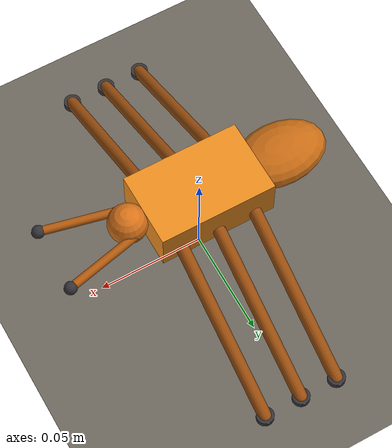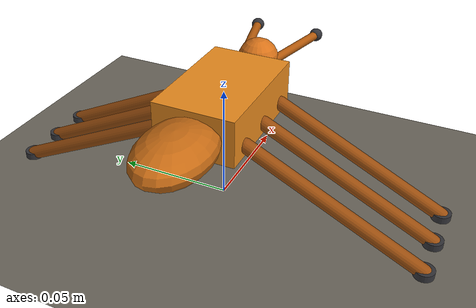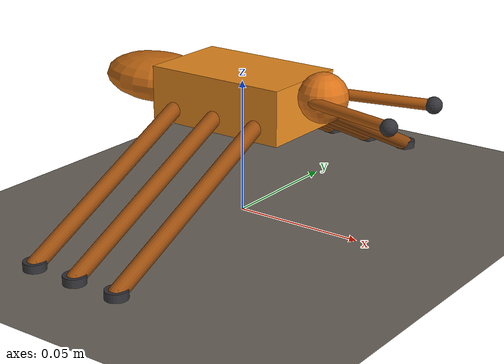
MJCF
<mujoco model="astraant_worker_gripfoot">

  <compiler angle="degree" coordinate="local"/>

  <option timestep="0.001" gravity="0 0 -9.81">
    <flag contact="enable"/>
  </option>

  <default>
    <joint damping="0.001" armature="0.00001" limited="true"/>
    <geom condim="3" friction="0.8 0.005 0.001" solref="0.02 1"/>
  </default>

  <asset>
    <material name="body_orange" rgba="0.92 0.55 0.12 1"/>
    <material name="abdomen_color" rgba="0.78 0.42 0.08 1"/>
    <material name="head_color" rgba="0.85 0.45 0.10 1"/>
    <material name="leg_brown" rgba="0.60 0.30 0.05 1"/>
    <material name="foot_pad_mat" rgba="0.20 0.20 0.22 1"/>
    <material name="mandible_color" rgba="0.70 0.35 0.05 1"/>
    <material name="regolith" rgba="0.42 0.40 0.36 1"/>
  </asset>

  <worldbody>
    <light diffuse="0.9 0.9 0.85" dir="-0.2 -0.3 -1" pos="0.2 0.3 0.5"/>
    <light diffuse="0.3 0.3 0.35" dir="0.5 0.5 -0.3" pos="-0.3 -0.3 0.3"/>

    <!-- Asteroid surface. Friction set at runtime per surface type:
         C-type rubble: 0.4  |  S-type rubble: 0.5
         S-type monolith: 0.7  |  M-type metallic: 0.6 -->
    <geom name="ground" type="plane" size="0.5 0.5 0.01"
          material="regolith" friction="0.5 0.01 0.001"/>

    <!-- ============ TORSO ============ -->
    <body name="torso" pos="0 0 0.045">
      <freejoint name="root"/>
      <camera name="track" pos="0 -0.25 0.12" xyaxes="1 0 0 0 0.5 1" mode="track"/>
      <camera name="top" pos="0 0 0.3" xyaxes="1 0 0 0 1 0" mode="track"/>

      <!-- Thorax: 55 x 35 x 20 mm (mass adjusted for lighter feet) -->
      <geom name="thorax" type="box" size="0.0275 0.0175 0.01"
            mass="0.0594" material="body_orange"/>

      <!-- Abdomen: 45 x 30 x 18 mm -->
      <geom name="abdomen" type="ellipsoid" size="0.0225 0.015 0.009"
            pos="-0.040 0 0" mass="0.020" material="abdomen_color"/>

      <!-- Head: 18 mm sphere -->
      <geom name="head" type="sphere" size="0.009"
            pos="0.035 0 0.005" mass="0.008" material="head_color"/>

      <!-- ============ LEG 0: Front-Left (Group A) ============ -->
      <body name="leg_0_FL" pos="0.018 0.0175 -0.005">
        <joint name="j_leg_0" type="hinge" axis="0 -1 0" range="-30 30"/>
        <geom name="leg_0" type="capsule"
              fromto="0 0 0  0 0.0725 -0.035" size="0.003"
              mass="0.003" material="leg_brown"/>
        <body name="foot_0" pos="0 0.0725 -0.035">
          <geom name="foot_0_pad" type="cylinder" size="0.004 0.0015"
                mass="0.0011" material="foot_pad_mat"
                friction="5.0 0.02 0.005" condim="6"
                solref="0.01 1"/>
        </body>
      </body>

      <!-- ============ LEG 1: Front-Right (Group B) ============ -->
      <body name="leg_1_FR" pos="0.018 -0.0175 -0.005">
        <joint name="j_leg_1" type="hinge" axis="0 -1 0" range="-30 30"/>
        <geom name="leg_1" type="capsule"
              fromto="0 0 0  0 -0.0725 -0.035" size="0.003"
              mass="0.003" material="leg_brown"/>
        <body name="foot_1" pos="0 -0.0725 -0.035">
          <geom name="foot_1_pad" type="cylinder" size="0.004 0.0015"
                mass="0.0011" material="foot_pad_mat"
                friction="5.0 0.02 0.005" condim="6"
                solref="0.01 1"/>
        </body>
      </body>

      <!-- ============ LEG 2: Mid-Left (Group B) ============ -->
      <body name="leg_2_ML" pos="0 0.0175 -0.005">
        <joint name="j_leg_2" type="hinge" axis="0 -1 0" range="-30 30"/>
        <geom name="leg_2" type="capsule"
              fromto="0 0 0  0 0.0725 -0.035" size="0.003"
              mass="0.003" material="leg_brown"/>
        <body name="foot_2" pos="0 0.0725 -0.035">
          <geom name="foot_2_pad" type="cylinder" size="0.004 0.0015"
                mass="0.0011" material="foot_pad_mat"
                friction="5.0 0.02 0.005" condim="6"
                solref="0.01 1"/>
        </body>
      </body>

      <!-- ============ LEG 3: Mid-Right (Group A) ============ -->
      <body name="leg_3_MR" pos="0 -0.0175 -0.005">
        <joint name="j_leg_3" type="hinge" axis="0 -1 0" range="-30 30"/>
        <geom name="leg_3" type="capsule"
              fromto="0 0 0  0 -0.0725 -0.035" size="0.003"
              mass="0.003" material="leg_brown"/>
        <body name="foot_3" pos="0 -0.0725 -0.035">
          <geom name="foot_3_pad" type="cylinder" size="0.004 0.0015"
                mass="0.0011" material="foot_pad_mat"
                friction="5.0 0.02 0.005" condim="6"
                solref="0.01 1"/>
        </body>
      </body>

      <!-- ============ LEG 4: Rear-Left (Group A) ============ -->
      <body name="leg_4_RL" pos="-0.018 0.0175 -0.005">
        <joint name="j_leg_4" type="hinge" axis="0 -1 0" range="-30 30"/>
        <geom name="leg_4" type="capsule"
              fromto="0 0 0  0 0.0725 -0.035" size="0.003"
              mass="0.003" material="leg_brown"/>
        <body name="foot_4" pos="0 0.0725 -0.035">
          <geom name="foot_4_pad" type="cylinder" size="0.004 0.0015"
                mass="0.0011" material="foot_pad_mat"
                friction="5.0 0.02 0.005" condim="6"
                solref="0.01 1"/>
        </body>
      </body>

      <!-- ============ LEG 5: Rear-Right (Group B) ============ -->
      <body name="leg_5_RR" pos="-0.018 -0.0175 -0.005">
        <joint name="j_leg_5" type="hinge" axis="0 -1 0" range="-30 30"/>
        <geom name="leg_5" type="capsule"
              fromto="0 0 0  0 -0.0725 -0.035" size="0.003"
              mass="0.003" material="leg_brown"/>
        <body name="foot_5" pos="0 -0.0725 -0.035">
          <geom name="foot_5_pad" type="cylinder" size="0.004 0.0015"
                mass="0.0011" material="foot_pad_mat"
                friction="5.0 0.02 0.005" condim="6"
                solref="0.01 1"/>
        </body>
      </body>

      <!-- ============ LEFT MANDIBLE ============ -->
      <body name="mandible_L" pos="0.035 0.007 0.005">
        <joint name="j_mandible_L" type="hinge" axis="0 0 1" range="-30 30"/>
        <geom name="mandible_L_arm" type="capsule"
              fromto="0 0 0  0.035 0.008 0" size="0.002"
              mass="0.003" material="mandible_color"/>
        <geom name="mandible_L_tip" type="sphere" size="0.003"
              pos="0.035 0.008 0" mass="0.001" material="foot_pad_mat"/>
      </body>

      <!-- ============ RIGHT MANDIBLE ============ -->
      <body name="mandible_R" pos="0.035 -0.007 0.005">
        <joint name="j_mandible_R" type="hinge" axis="0 0 -1" range="-30 30"/>
        <geom name="mandible_R_arm" type="capsule"
              fromto="0 0 0  0.035 -0.008 0" size="0.002"
              mass="0.003" material="mandible_color"/>
        <geom name="mandible_R_tip" type="sphere" size="0.003"
              pos="0.035 -0.008 0" mass="0.001" material="foot_pad_mat"/>
      </body>

    </body>
  </worldbody>

  <!-- ============ ACTUATORS ============ -->
  <actuator>
    <position name="servo_leg_0" joint="j_leg_0" kp="5.0" kv="0.01"
              ctrlrange="-30 30" forcerange="-0.176 0.176"/>
    <position name="servo_leg_1" joint="j_leg_1" kp="5.0" kv="0.01"
              ctrlrange="-30 30" forcerange="-0.176 0.176"/>
    <position name="servo_leg_2" joint="j_leg_2" kp="5.0" kv="0.01"
              ctrlrange="-30 30" forcerange="-0.176 0.176"/>
    <position name="servo_leg_3" joint="j_leg_3" kp="5.0" kv="0.01"
              ctrlrange="-30 30" forcerange="-0.176 0.176"/>
    <position name="servo_leg_4" joint="j_leg_4" kp="5.0" kv="0.01"
              ctrlrange="-30 30" forcerange="-0.176 0.176"/>
    <position name="servo_leg_5" joint="j_leg_5" kp="5.0" kv="0.01"
              ctrlrange="-30 30" forcerange="-0.176 0.176"/>
    <position name="servo_mandible_L" joint="j_mandible_L" kp="3.0" kv="0.005"
              ctrlrange="-30 30" forcerange="-0.098 0.098"/>
    <position name="servo_mandible_R" joint="j_mandible_R" kp="3.0" kv="0.005"
              ctrlrange="-30 30" forcerange="-0.098 0.098"/>
  </actuator>

  <sensor>
    <framepos name="torso_pos" objtype="body" objname="torso"/>
    <framequat name="torso_quat" objtype="body" objname="torso"/>
    <framelinvel name="torso_linvel" objtype="body" objname="torso"/>
    <subtreecom name="com_pos" body="torso"/>
  </sensor>

</mujoco>
